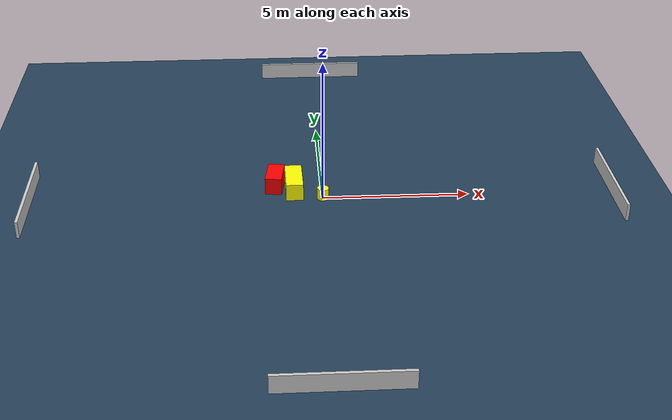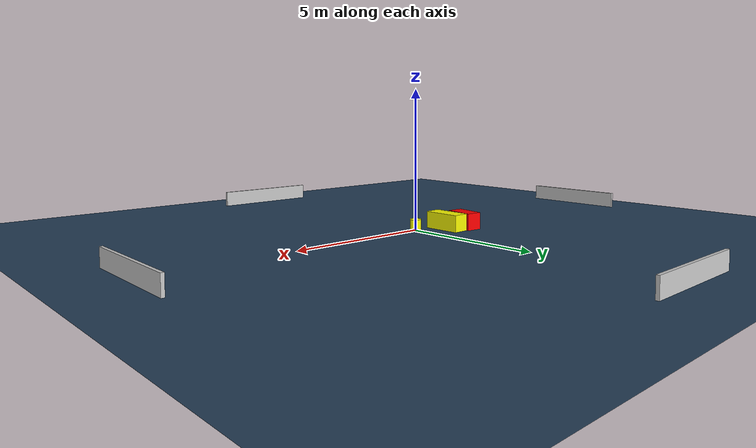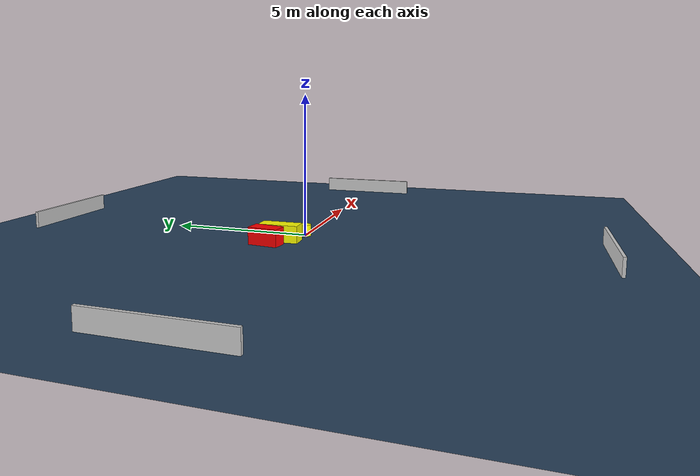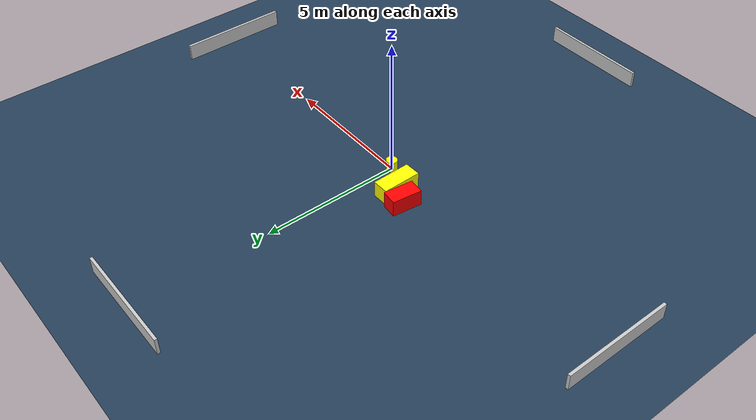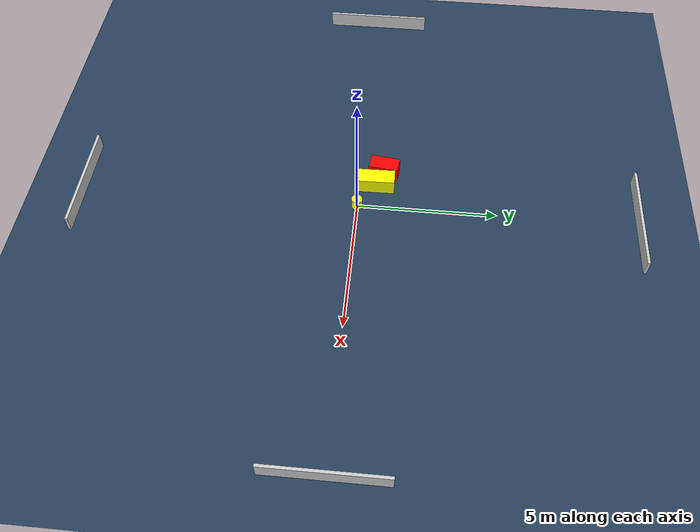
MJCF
<?xml version="1.0" ?>
<mujoco model="generated_environment">
  <option timestep="0.01" integrator="RK4" cone="elliptic"/>
  <default>
    <geom density="1"/>
  </default>
  <asset>
    <texture builtin="gradient" height="3072" name="skybox" rgb1="0.3 0.5 0.7" rgb2="0 0 0" type="skybox" width="512"/>
    <texture builtin="checker" height="300" name="groundplane" rgb1="0.2 0.3 0.4" rgb2="0.1 0.2 0.3" type="2d" width="300"/>
    <material name="groundplane" reflectance="0.2" texrepeat="5 5" texture="groundplane"/>
  </asset>
  <worldbody>
    <light dir="0 0 -1" directional="true" pos="0 0 1.5"/>
    <geom condim="3" friction="0.5 0.005 0.001" material="groundplane" name="floor" pos="0 0 0" size="0 0 0.05" type="plane"/>
    <body name="walls">
      <geom name="wall_1" condim="4" pos="-10.0 0.0 0.3" rgba="0.800000011920929 0.800000011920929 0.800000011920929 1.0" size="0.05 2.0 0.3" type="box"/>
      <geom name="wall_2" condim="4" pos="10.0 0.0 0.3" rgba="0.800000011920929 0.800000011920929 0.800000011920929 1.0" size="0.05 2.0 0.3" type="box"/>
      <geom name="wall_3" condim="4" pos="0.0 -10.0 0.3" rgba="0.800000011920929 0.800000011920929 0.800000011920929 1.0" size="2.0 0.05 0.3" type="box"/>
      <geom name="wall_4" condim="4" pos="0.0 10.0 0.3" rgba="0.800000011920929 0.800000011920929 0.800000011920929 1.0" size="2.0 0.05 0.3" type="box"/>
    </body>
    <body name="robot">
      <joint name="joint_x" type="slide" pos="0 0 0" axis="1 0 0"/>
      <joint name="joint_y" type="slide" pos="0 0 0" axis="0 1 0"/>
      <geom name="robot" type="cylinder" pos="0.0 0.0 0.2" size="0.2 0.2 0.0" mass="5.0" friction="1.0 0.005 0.0001" condim="4" rgba="1.0 1.0 0.0 1.0"/>
    </body>
    <body name="obstacle_1_movable">
      <geom name="obstacle_1_movable" condim="4" pos="-0.9776630490960634 0.5911606268154109 0.3" euler="0 0 0.8768732616683605" friction="0.0 0.005 0.001" rgba="1.0 1.0 0.0 1.0" size="0.2936475724412074 0.6975427581375777 0.3" type="box" mass="0.1"/>
      <joint type="free"/>
    </body>
    <body name="obstacle_2_static">
      <geom name="obstacle_2_static" condim="4" pos="-1.6260222116530858 0.8649987985415936 0.3" euler="0 0 82.8455621644283" friction="0.0 0.005 0.001" rgba="1.0 0.0 0.0 1.0" size="0.5338646239410835 0.2856584625279385 0.3" type="box"/>
    </body>
  </worldbody>
  <actuator>
    <motor name="actuator_x" joint="joint_x" gear="1" ctrlrange="-1 1"/>
    <motor name="actuator_y" joint="joint_y" gear="1" ctrlrange="-1 1"/>
  </actuator>
</mujoco>
